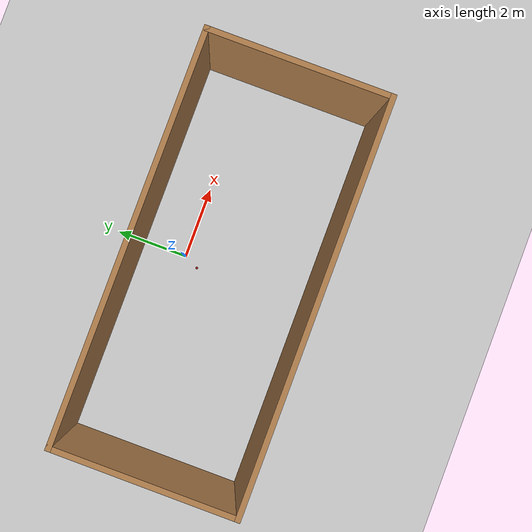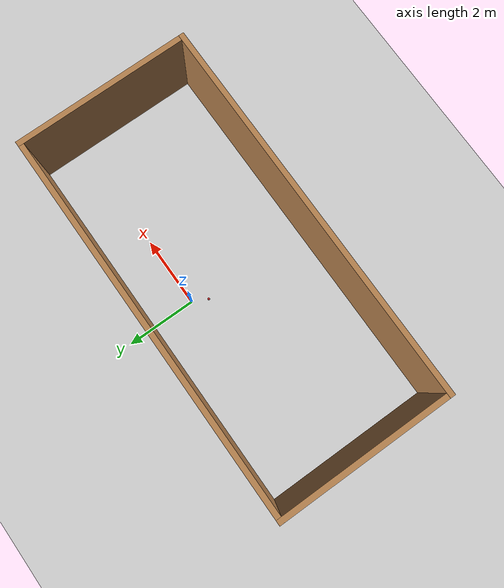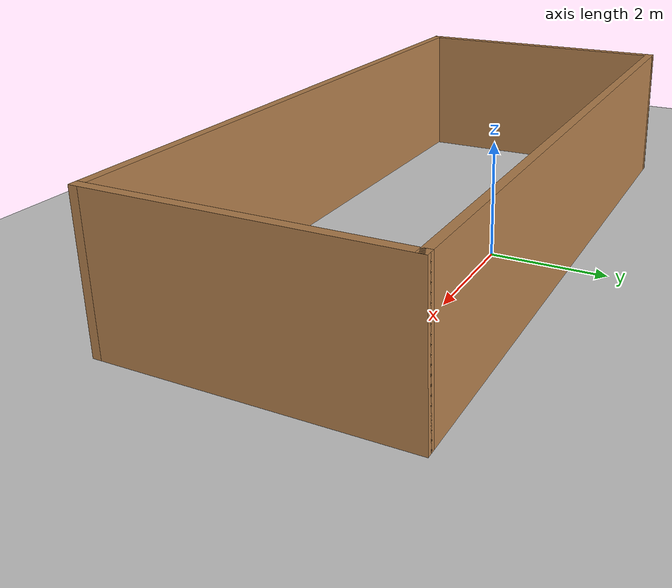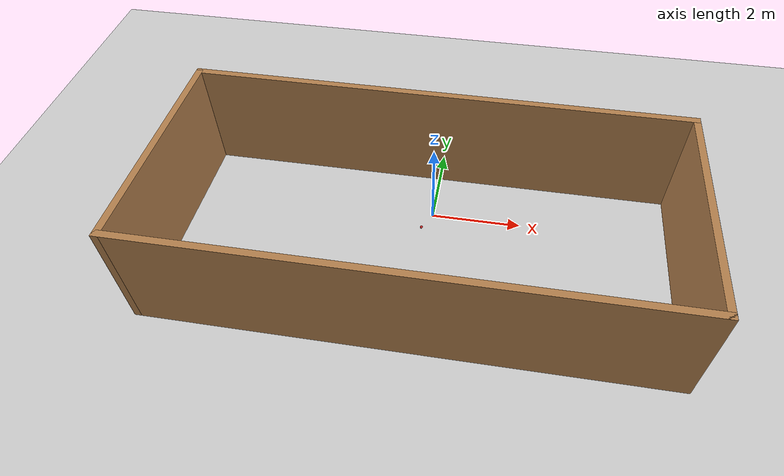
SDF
<sdf version="1.7">
 <world name="default">
  <model name="ground_plane">
   <static>1</static>
   <link name="link">
    <collision name="collision">
     <geometry><plane><normal>0 0 1</normal><size>100 100</size></plane></geometry>
     <surface>
      <contact><collide_bitmask>65535</collide_bitmask></contact>
      <friction><ode><mu>100</mu><mu2>50</mu2></ode></friction>
     </surface>
    </collision>
    <visual name="visual">
     <cast_shadows>0</cast_shadows>
     <geometry><plane><normal>0 0 1</normal><size>100 100</size></plane></geometry>
     <material>
      <script><uri>file://media/materials/scripts/gazebo.material</uri><name>Gazebo/Grey</name></script>
     </material>
    </visual>
   </link>
  </model>
  <light name="sun" type="directional">
   <pose>0 0 10 0 -0 0</pose>
   <diffuse>0.8 0.8 0.8 1</diffuse>
   <specular>0.2 0.2 0.2 1</specular>
   <attenuation>
    <range>1000</range>
    <constant>0.9</constant>
    <linear>0.01</linear>
    <quadratic>0.001</quadratic>
   </attenuation>
   <direction>-0.5 0.1 -0.9</direction>
   <spot><inner_angle>0</inner_angle><outer_angle>0</outer_angle><falloff>0</falloff></spot>
  </light>
  <scene><shadows>0</shadows><ambient>0.4 0.4 0.4 1</ambient><background>0.7 0.7 0.7 1</background></scene>
  <physics type="ode">
   <real_time_update_rate>1000</real_time_update_rate>
   <max_step_size>0.001</max_step_size>
   <real_time_factor>1</real_time_factor>
   <ode>
    <solver>
     <type>quick</type>
     <iters>150</iters>
     <precon_iters>0</precon_iters>
     <sor>1.4</sor>
     <use_dynamic_moi_rescaling>1</use_dynamic_moi_rescaling>
    </solver>
    <constraints>
     <cfm>1e-05</cfm>
     <erp>0.2</erp>
     <contact_max_correcting_vel>2000</contact_max_correcting_vel>
     <contact_surface_layer>0.01</contact_surface_layer>
    </constraints>
   </ode>
  </physics>
  <gravity>0 0 -9.8</gravity>
  <magnetic_field>6e-06 2.3e-05 -4.2e-05</magnetic_field>
  <atmosphere type="adiabatic"/>
  <audio><device>default</device></audio>
  <spherical_coordinates>
   <surface_model>EARTH_WGS84</surface_model>
   <latitude_deg>0</latitude_deg>
   <longitude_deg>0</longitude_deg>
   <elevation>0</elevation>
   <heading_deg>0</heading_deg>
  </spherical_coordinates>
  <model name="room1__trial">
   <pose>-0.106862 -0.749912 0 0 -0 0</pose>
   <link name="Wall_0">
    <collision name="Wall_0_Collision">
     <geometry><box><size>11 0.15 2.5</size></box></geometry>
     <pose>0 0 1.25 0 -0 0</pose>
    </collision>
    <visual name="Wall_0_Visual">
     <pose>0 0 1.25 0 -0 0</pose>
     <geometry><box><size>11 0.15 2.5</size></box></geometry>
     <material>
      <script><uri>file://media/materials/scripts/gazebo.material</uri><name>Gazebo/Wood</name></script>
      <ambient>1 1 1 1</ambient>
     </material>
     <meta><layer>0</layer></meta>
    </visual>
    <pose>0 2.0325 0 0 -0 0</pose>
   </link>
   <link name="Wall_1">
    <collision name="Wall_1_Collision">
     <geometry><box><size>5 0.15 2.5</size></box></geometry>
     <pose>0 0 1.25 0 -0 0</pose>
    </collision>
    <visual name="Wall_1_Visual">
     <pose>0 0 1.25 0 -0 0</pose>
     <geometry><box><size>5 0.15 2.5</size></box></geometry>
     <material>
      <script><uri>file://media/materials/scripts/gazebo.material</uri><name>Gazebo/Wood</name></script>
      <ambient>1 1 1 1</ambient>
     </material>
     <meta><layer>0</layer></meta>
    </visual>
    <pose>5.425 -0.3925 0 0 -0 -1.5708</pose>
   </link>
   <link name="Wall_2">
    <collision name="Wall_2_Collision">
     <geometry><box><size>11 0.15 2.5</size></box></geometry>
     <pose>0 0 1.25 0 -0 0</pose>
    </collision>
    <visual name="Wall_2_Visual">
     <pose>0 0 1.25 0 -0 0</pose>
     <geometry><box><size>11 0.15 2.5</size></box></geometry>
     <material>
      <script><uri>file://media/materials/scripts/gazebo.material</uri><name>Gazebo/Wood</name></script>
      <ambient>1 1 1 1</ambient>
     </material>
     <meta><layer>0</layer></meta>
    </visual>
    <pose>0 -2.8175 0 0 -0 3.14159</pose>
   </link>
   <link name="Wall_3">
    <collision name="Wall_3_Collision">
     <geometry><box><size>5 0.15 2.5</size></box></geometry>
     <pose>0 0 1.25 0 -0 0</pose>
    </collision>
    <visual name="Wall_3_Visual">
     <pose>0 0 1.25 0 -0 0</pose>
     <geometry><box><size>5 0.15 2.5</size></box></geometry>
     <material>
      <script><uri>file://media/materials/scripts/gazebo.material</uri><name>Gazebo/Wood</name></script>
      <ambient>1 1 1 1</ambient>
     </material>
     <meta><layer>0</layer></meta>
    </visual>
    <pose>-5.425 -0.3925 0 0 -0 1.5708</pose>
   </link>
   <static>1</static>
  </model>
  <model name="orange_ball">
   <link name="ball">
    <inertial>
     <mass>0.03</mass>
     <inertia>
      <ixx>1.268e-05</ixx>
      <iyy>1.268e-05</iyy>
      <izz>1.268e-05</izz>
      <ixy>0</ixy>
      <ixz>0</ixz>
      <iyz>0</iyz>
     </inertia>
    </inertial>
    <visual name="visual">
     <geometry><sphere><radius>0.0325</radius></sphere></geometry>
     <material>
      <script><uri>file://media/materials/scripts/gazebo.material</uri><name>Gazebo/RedBright</name></script>
      <shader type="pixel"><normal_map>__default__</normal_map></shader>
     </material>
    </visual>
    <collision name="collision">
     <geometry><sphere><radius>0.0325</radius></sphere></geometry>
     <surface>
      <friction>
       <ode><mu>1</mu><mu2>1</mu2><fdir1>0 0 0</fdir1><slip1>0</slip1><slip2>0</slip2></ode>
       <torsional>
        <coefficient>1</coefficient>
        <patch_radius>0</patch_radius>
        <surface_radius>0</surface_radius>
        <use_patch_radius>1</use_patch_radius>
        <ode><slip>0</slip></ode>
       </torsional>
      </friction>
      <bounce><restitution_coefficient>0</restitution_coefficient><threshold>1e+06</threshold></bounce>
      <contact>
       <collide_without_contact>0</collide_without_contact>
       <collide_without_contact_bitmask>1</collide_without_contact_bitmask>
       <collide_bitmask>1</collide_bitmask>
       <ode>
        <soft_cfm>0</soft_cfm>
        <soft_erp>0.2</soft_erp>
        <kp>1e+13</kp>
        <kd>1</kd>
        <max_vel>0.01</max_vel>
        <min_depth>0</min_depth>
       </ode>
       <bullet>
        <split_impulse>1</split_impulse>
        <split_impulse_penetration_threshold>-0.01</split_impulse_penetration_threshold>
        <soft_cfm>0</soft_cfm>
        <soft_erp>0.2</soft_erp>
        <kp>1e+13</kp>
        <kd>1</kd>
       </bullet>
      </contact>
     </surface>
    </collision>
   </link>
   <static>0</static>
   <pose>-0.20308 -0.415424 0.0325 0 -0 0</pose>
  </model>
  <plugin name="gazebo_link_attacher" filename="libgazebo_link_attacher.so"/>
  <plugin name="gazebo_ros_state" filename="libgazebo_ros_state.so"/>
 </world>
</sdf>
